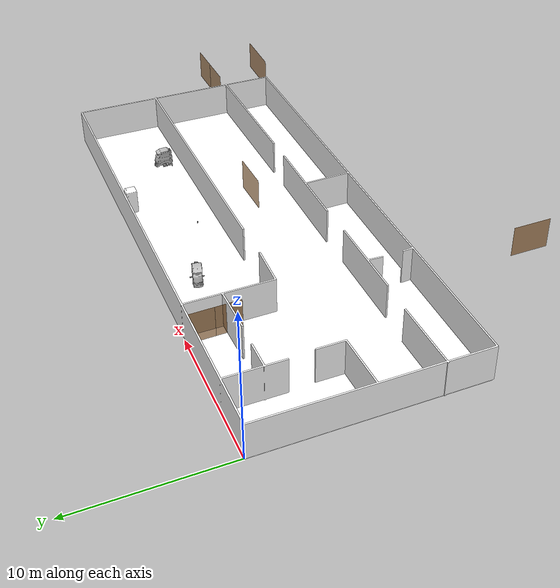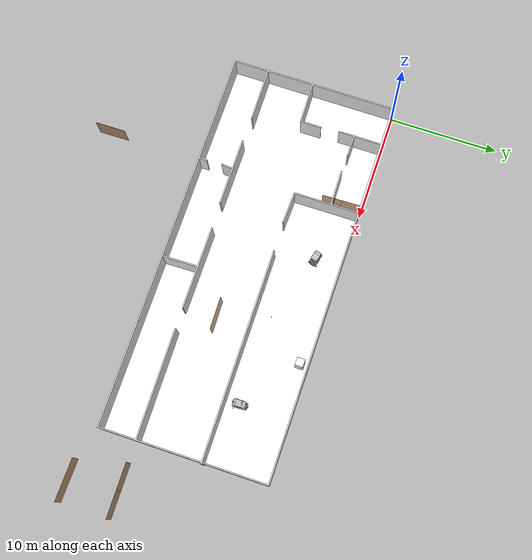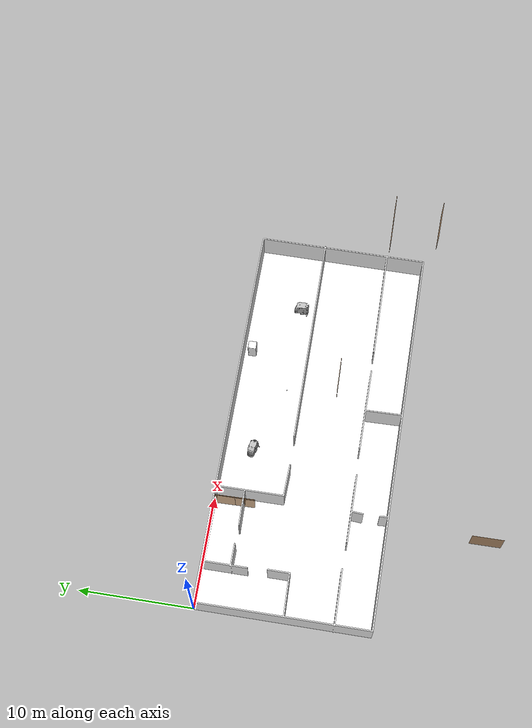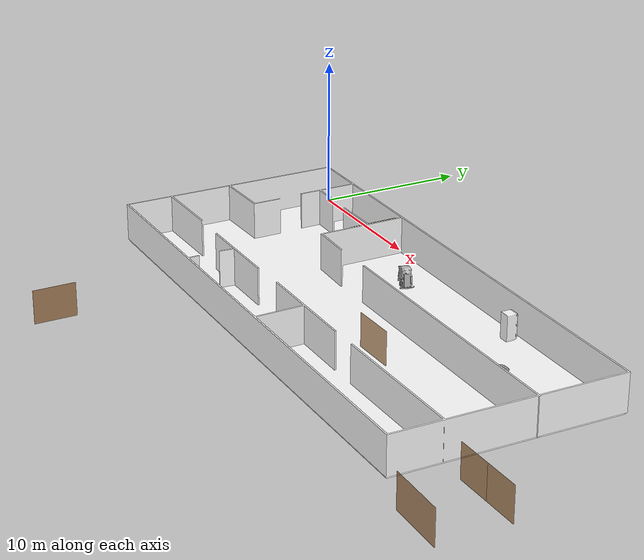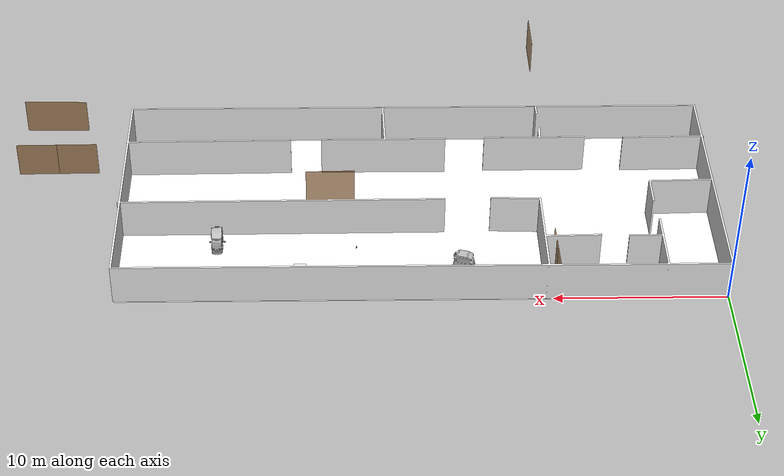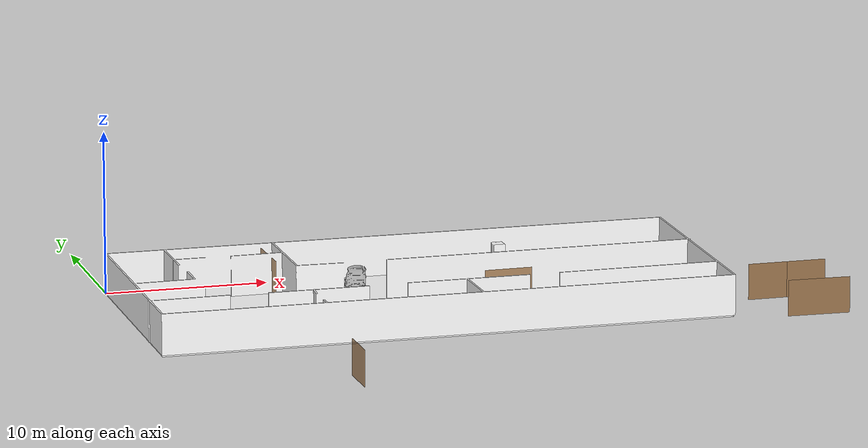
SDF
<sdf version="1.7">
 <world name="world">
  <scene><ambient>0.8 0.8 0.8 1.0</ambient><background>0 0 0</background><grid>false</grid></scene>
  <include><uri>model://sun</uri></include>
  <include>
   <name>OpenRobotics/Fridge</name>
   <uri>model://Fridge</uri>
   <pose>24.42221432101156 -0.8560902065715843 0.0 0 0 1.5708</pose>
   <static>True</static>
  </include>
  <include>
   <name>pickup_sala2</name>
   <uri>model://TeleportDispenser</uri>
   <pose>21.169442083175333 -4.5625300399811834 0.0 0 0 1.5708</pose>
   <static>True</static>
  </include>
  <include>
   <name>coke_sala2</name>
   <uri>model://Coke</uri>
   <pose>21.188769484917323 -4.581857441723171 0.0 0 0 1.5708</pose>
   <static>False</static>
  </include>
  <include>
   <name>ingestor_sala4</name>
   <uri>model://TeleportIngestor</uri>
   <pose>20.376850181237558 -19.412796013736873 0.0 0 0 1.5708</pose>
   <static>True</static>
  </include>
  <include>
   <name>cleanerBotA_1</name>
   <uri>model://CleanerBotA</uri>
   <pose>29.35234396275212 -5.067611050645989 0.0 0 0 1.589734224628802</pose>
  </include>
  <include>
   <name>cleanerBotA_2</name>
   <uri>model://CleanerBotA</uri>
   <pose>15.352104696982295 -2.5894086495066437 0.0 0 0 2.9052178998482416</pose>
  </include>
  <model name="door_sala4">
   <pose>39.914642691861346 -16.329864897744457 0.0 0 0 3.117433033473945</pose>
   <link name="right">
    <pose>0 0 1.11 0 0 0</pose>
    <visual name="right_visual">
     <geometry><box><size>3.836938735549568 0.03 2.2</size></box></geometry>
     <material><ambient>0.5 0.25 0 0.6</ambient><diffuse>0.5 0.25 0 0.6</diffuse></material>
    </visual>
    <collision name="right_collision">
     <geometry><box><size>3.836938735549568 0.03 2.2</size></box></geometry>
     <surface><contact><collide_bitmask>0x02</collide_bitmask></contact></surface>
    </collision>
    <inertial>
     <mass>50.0</mass>
     <inertia><ixx>20.17041666666667</ixx><iyy>81.50874525150299</iyy><izz>61.345828584836326</izz></inertia>
    </inertial>
   </link>
   <joint name="right_joint" type="revolute">
    <parent>world</parent>
    <child>right</child>
    <axis><xyz>0 0 -1</xyz><limit><lower>0</lower><upper>1.57</upper></limit></axis>
    <pose>1.9234693677747838 0 0 0 0 0</pose>
   </joint>
   <plugin name="door" filename="libdoor.so">
    <v_max_door>0.5</v_max_door>
    <a_max_door>0.3</a_max_door>
    <a_nom_door>0.15</a_nom_door>
    <dx_min_door>0.01</dx_min_door>
    <f_max_door>500.0</f_max_door>
    <door name="door_sala4" type="SwingDoor" left_joint_name="empty_joint" right_joint_name="right_joint"/>
   </plugin>
  </model>
  <model name="door_sala5">
   <pose>9.548725989825138 -23.769272370876187 0.0 0 0 1.5774924158624173</pose>
   <link name="right">
    <pose>0 0 1.11 0 0 0</pose>
    <visual name="right_visual">
     <geometry><box><size>2.738047588286064 0.03 2.2</size></box></geometry>
     <material><ambient>0.5 0.25 0 0.6</ambient><diffuse>0.5 0.25 0 0.6</diffuse></material>
    </visual>
    <collision name="right_collision">
     <geometry><box><size>2.738047588286064 0.03 2.2</size></box></geometry>
     <surface><contact><collide_bitmask>0x02</collide_bitmask></contact></surface>
    </collision>
    <inertial>
     <mass>50.0</mass>
     <inertia><ixx>20.17041666666667</ixx><iyy>51.403769148829724</iyy><izz>31.240852482163053</izz></inertia>
    </inertial>
   </link>
   <joint name="right_joint" type="revolute">
    <parent>world</parent>
    <child>right</child>
    <axis><xyz>0 0 -1</xyz><limit><lower>0</lower><upper>1.57</upper></limit></axis>
    <pose>1.374023794143032 0 0 0 0 0</pose>
   </joint>
   <plugin name="door" filename="libdoor.so">
    <v_max_door>0.5</v_max_door>
    <a_max_door>0.3</a_max_door>
    <a_nom_door>0.15</a_nom_door>
    <dx_min_door>0.01</dx_min_door>
    <f_max_door>500.0</f_max_door>
    <door name="door_sala5" type="SwingDoor" left_joint_name="empty_joint" right_joint_name="right_joint"/>
   </plugin>
  </model>
  <model name="door_sala2">
   <pose>22.711844535918296 -9.09240561362051 0.0 0 0 0.021618175512888672</pose>
   <link name="right">
    <pose>0 0 1.11 0 0 0</pose>
    <visual name="right_visual">
     <geometry><box><size>2.9177538366640787 0.03 2.2</size></box></geometry>
     <material><ambient>0.5 0.25 0 0.6</ambient><diffuse>0.5 0.25 0 0.6</diffuse></material>
    </visual>
    <collision name="right_collision">
     <geometry><box><size>2.9177538366640787 0.03 2.2</size></box></geometry>
     <surface><contact><collide_bitmask>0x02</collide_bitmask></contact></surface>
    </collision>
    <inertial>
     <mass>50.0</mass>
     <inertia><ixx>20.17041666666667</ixx><iyy>55.638697714033135</iyy><izz>35.47578104736646</izz></inertia>
    </inertial>
   </link>
   <joint name="right_joint" type="revolute">
    <parent>world</parent>
    <child>right</child>
    <axis><xyz>0 0 -1</xyz><limit><lower>0</lower><upper>1.57</upper></limit></axis>
    <pose>1.4638769183320393 0 0 0 0 0</pose>
   </joint>
   <plugin name="door" filename="libdoor.so">
    <v_max_door>0.5</v_max_door>
    <a_max_door>0.3</a_max_door>
    <a_nom_door>0.15</a_nom_door>
    <dx_min_door>0.01</dx_min_door>
    <f_max_door>500.0</f_max_door>
    <door name="door_sala2" type="SwingDoor" left_joint_name="empty_joint" right_joint_name="right_joint"/>
   </plugin>
  </model>
  <model name="door_sala3">
   <pose>39.38181275364104 -11.889383820615455 0.0 0 0 0.010812536889129221</pose>
   <link name="right">
    <pose>1.2189502653349895 0 1.11 0 0 0</pose>
    <visual name="right_visual">
     <geometry><box><size>2.4279005306699792 0.03 2.2</size></box></geometry>
     <material><ambient>0.5 0.25 0 0.6</ambient><diffuse>0.5 0.25 0 0.6</diffuse></material>
    </visual>
    <collision name="right_collision">
     <geometry><box><size>2.4279005306699792 0.03 2.2</size></box></geometry>
     <surface><contact><collide_bitmask>0x02</collide_bitmask></contact></surface>
    </collision>
    <inertial>
     <mass>50.0</mass>
     <inertia><ixx>20.17041666666667</ixx><iyy>44.7279207784482</iyy><izz>24.565004111781526</izz></inertia>
    </inertial>
   </link>
   <joint name="right_joint" type="prismatic">
    <parent>world</parent>
    <child>right</child>
    <axis>
     <xyz>1 0 0</xyz>
     <limit><lower>0.0</lower><upper>2.437900530669979</upper><effort>500.0</effort></limit>
    </axis>
   </joint>
   <link name="left">
    <pose>-1.2189502653349895 0 1.11 0 0 0</pose>
    <visual name="left_visual">
     <geometry><box><size>2.4279005306699792 0.03 2.2</size></box></geometry>
     <material><ambient>0.5 0.25 0 0.6</ambient><diffuse>0.5 0.25 0 0.6</diffuse></material>
    </visual>
    <collision name="left_collision">
     <geometry><box><size>2.4279005306699792 0.03 2.2</size></box></geometry>
     <surface><contact><collide_bitmask>0x02</collide_bitmask></contact></surface>
    </collision>
    <inertial>
     <mass>50.0</mass>
     <inertia><ixx>20.17041666666667</ixx><iyy>44.7279207784482</iyy><izz>24.565004111781526</izz></inertia>
    </inertial>
   </link>
   <joint name="left_joint" type="prismatic">
    <parent>world</parent>
    <child>left</child>
    <axis>
     <xyz>1 0 0</xyz>
     <limit><lower>-2.437900530669979</lower><upper>0.0</upper><effort>500.0</effort></limit>
    </axis>
   </joint>
   <plugin name="door" filename="libdoor.so">
    <v_max_door>0.2</v_max_door>
    <a_max_door>0.2</a_max_door>
    <a_nom_door>0.08</a_nom_door>
    <dx_min_door>0.001</dx_min_door>
    <f_max_door>100.0</f_max_door>
    <door name="door_sala3" type="DoubleSlidingDoor" left_joint_name="left_joint" right_joint_name="right_joint"/>
   </plugin>
  </model>
  <model name="door_sala1">
   <pose>9.675448899503817 -1.8748211304164333 0.0 0 0 -1.5503192280569054</pose>
   <link name="right">
    <pose>0.870915720719921 0 1.11 0 0 0</pose>
    <visual name="right_visual">
     <geometry><box><size>1.731831441439842 0.03 2.2</size></box></geometry>
     <material><ambient>0.5 0.25 0 0.6</ambient><diffuse>0.5 0.25 0 0.6</diffuse></material>
    </visual>
    <collision name="right_collision">
     <geometry><box><size>1.731831441439842 0.03 2.2</size></box></geometry>
     <surface><contact><collide_bitmask>0x02</collide_bitmask></contact></surface>
    </collision>
    <inertial>
     <mass>50.0</mass>
     <inertia><ixx>20.17041666666667</ixx><iyy>32.66350058983168</iyy><izz>12.500583923165003</izz></inertia>
    </inertial>
   </link>
   <joint name="right_joint" type="prismatic">
    <parent>world</parent>
    <child>right</child>
    <axis>
     <xyz>1 0 0</xyz>
     <limit><lower>0.0</lower><upper>1.741831441439842</upper><effort>500.0</effort></limit>
    </axis>
   </joint>
   <link name="left">
    <pose>-0.870915720719921 0 1.11 0 0 0</pose>
    <visual name="left_visual">
     <geometry><box><size>1.731831441439842 0.03 2.2</size></box></geometry>
     <material><ambient>0.5 0.25 0 0.6</ambient><diffuse>0.5 0.25 0 0.6</diffuse></material>
    </visual>
    <collision name="left_collision">
     <geometry><box><size>1.731831441439842 0.03 2.2</size></box></geometry>
     <surface><contact><collide_bitmask>0x02</collide_bitmask></contact></surface>
    </collision>
    <inertial>
     <mass>50.0</mass>
     <inertia><ixx>20.17041666666667</ixx><iyy>32.66350058983168</iyy><izz>12.500583923165003</izz></inertia>
    </inertial>
   </link>
   <joint name="left_joint" type="prismatic">
    <parent>world</parent>
    <child>left</child>
    <axis>
     <xyz>1 0 0</xyz>
     <limit><lower>-1.741831441439842</lower><upper>0.0</upper><effort>500.0</effort></limit>
    </axis>
   </joint>
   <plugin name="door" filename="libdoor.so">
    <v_max_door>0.2</v_max_door>
    <a_max_door>0.2</a_max_door>
    <a_nom_door>0.08</a_nom_door>
    <dx_min_door>0.001</dx_min_door>
    <f_max_door>100.0</f_max_door>
    <door name="door_sala1" type="DoubleSlidingDoor" left_joint_name="left_joint" right_joint_name="right_joint"/>
   </plugin>
  </model>
  <include><name>my_world_L1</name><uri>model://my_world_L1</uri></include>
  <rmf_charger_waypoints name="charger_waypoints">
   <rmf_vertex name="charge1" x="2.2744014764525873" y="-12.559063553305165" level="L1"/>
   <rmf_vertex name="charge2" x="39.136514760508256" y="-14.102560804403879" level="L1"/>
   <rmf_vertex name="cleanerbot_charger1" x="29.35234396275212" y="-5.067611050645989" level="L1"/>
   <rmf_vertex name="cleanerbot_charger2" x="15.352104696982295" y="-2.5894086495066437" level="L1"/>
  </rmf_charger_waypoints>
 </world>
</sdf>

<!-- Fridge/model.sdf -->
<sdf version="1.6">
  <model name="Fridge">
    <static>true</static>
    <link name="base_link">
      <visual name="visual">
        <geometry>
          <mesh>
            <uri>meshes/fridge.dae</uri>
          </mesh>
        </geometry>
        <material>
          <diffuse>1.0 1.0 1.0</diffuse>
          <specular>1.0 1.0 1.0</specular>
          <pbr>
            <metal>
              <albedo_map>materials/textures/Fridge_Albedo.jpg</albedo_map>
              <normal_map>materials/textures/Fridge_Normal.png</normal_map>
              <roughness_map>materials/textures/Fridge_Roughness.jpg</roughness_map>
              <metalness_map>materials/textures/Fridge_Metalness.jpg</metalness_map>
            </metal>
          </pbr>
        </material>
      </visual>
      <collision name="Box001">
        <pose>0.0 0.0 0.867923 0.0 0.0 0.0</pose>
        <geometry>
          <box>
            <size>0.734673 0.7239 1.73585</size>
          </box>
        </geometry>
      </collision>
    </link>
  </model>
</sdf>

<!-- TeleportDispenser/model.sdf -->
<sdf version="1.6">
  <model name="TeleportDispenser">
    <pose>0.0 0.0 0.0 0.0 0.0 0.0</pose>
    <static>true</static>

    <link name="visual_link">
      <pose>0.0 0.0 0.05 0.0 0.0 0.0</pose>
      <visual name="visual">
        <geometry>
          <box>
            <size>0.1 0.1 0.1</size>
          </box>
        </geometry>
        <material>
          <ambient>128 192 210 0.1</ambient>
          <diffuse>128 192 210 0.1</diffuse>
        </material>
      </visual>
    </link>

    <plugin name="teleport_dispenser" filename="libteleport_dispenser.so">
    </plugin>

  </model>
</sdf>

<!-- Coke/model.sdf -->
<sdf version="1.6">
  <model name='Coke'>
    <static>true</static>
    <link name="body">
      <pose>0 0 0 0 0 0</pose>

        <visual name="visual">
          <geometry>
            <mesh><uri>model://Coke/meshes/coke.obj</uri></mesh>
          </geometry>
        </visual>

        <collision name="collision">
          <geometry>
            <mesh><uri>model://Coke/meshes/coke.obj</uri></mesh>
          </geometry>
        </collision>

        <!-- TODO: Replace with accurate values of mass and inertia -->
        <inertial>
          <mass>1.0</mass>
          <inertia>
            <ixx>0.003366666666666667</ixx>
            <iyy>0.0008666666666666667</iyy>
            <izz>0.0041666666666666675</izz>
          </inertia>
        </inertial>

    </link>

  </model>
</sdf>

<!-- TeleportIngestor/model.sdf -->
<sdf version="1.6">
  <model name="TeleportIngestor">
    <pose>0.0 0.0 0.0 0.0 0.0 0.0</pose>
    <static>true</static>

    <link name="visual_link">
      <pose>0.0 0.0 0.05 0.0 0.0 0.0</pose>
      <visual name="visual">
        <geometry>
          <box>
            <size>0.1 0.1 0.1</size>
          </box>
        </geometry>
        <material>
          <ambient>128 192 210 0.1</ambient>
          <diffuse>128 192 210 0.1</diffuse>
        </material>
      </visual>
    </link>

    <plugin name="teleport_ingestor" filename="libteleport_ingestor.so">
    </plugin>

  </model>
</sdf>

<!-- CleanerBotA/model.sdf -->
<sdf version="1.6">
  <model name='CleanerBotA'>

    <!-- TODO: Find actual physical properties for CleanerBotA instead of duplicating -->
    <!-- Note: rotational axis of the robot should located at the origin  -->

    <plugin name="slotcar" filename="libslotcar.so">

      <!-- Forward / Backward -->
      <nominal_drive_speed>0.7</nominal_drive_speed>
      <nominal_drive_acceleration>0.5</nominal_drive_acceleration>
      <max_drive_acceleration>0.6</max_drive_acceleration>

      <!-- Turning -->
      <nominal_turn_speed>0.4</nominal_turn_speed>
      <nominal_turn_acceleration>1.0</nominal_turn_acceleration>
      <max_turn_acceleration>1.2</max_turn_acceleration>

      <!-- Stop distance and radius  -->
      <stop_distance>1.5</stop_distance>
      <stop_radius>1.5</stop_radius>

      <!-- Can the robot drive backwards -->
      <reversible>false</reversible>

      <!-- Battery params -->
      <nominal_voltage>24.0</nominal_voltage>
      <nominal_capacity>20.0</nominal_capacity>
      <charging_current>10.0</charging_current>

      <!-- Physical params -->
      <mass>70.0</mass>
      <inertia>40.0</inertia>
      <friction_coefficient>0.22</friction_coefficient>

      <!-- Power systems -->
      <nominal_power>100.0</nominal_power>

    </plugin>

    <!-- Main CleanerBotA Body -->

    <link name="body">
      <pose>0 0 0 0 0 0</pose>

      <inertial>
        <pose>0.36 0 0.43294142 0 0 0</pose>
        <mass>15.0</mass> <!-- Mass reduced to prevent model rolling when stationary -->
        <inertia>
          <ixx>3.016</ixx>
          <iyy>2.332</iyy>
          <izz>2.425</izz>
        </inertia>
      </inertial>

      <visual name="visual">
        <pose frame=''>0.36 0 0 0 0 0</pose>
        <geometry>
          <mesh><uri>model://CleanerBotA/meshes/CleanerBotA.obj</uri></mesh>
        </geometry>
      </visual>
      <collision name="body_collision">
        <pose frame=''>0.46 0 0.7 0 0 0</pose>
        <geometry>
          <box>
            <size>1.3 0.8 1.2</size>
          </box>
        </geometry>
      </collision>

      <visual name="WheelFront">
        <pose>0.86 0.0 0.07 0 0 0</pose>
        <geometry>
          <mesh>
            <uri>model://CleanerBotA/meshes/CleanerBotA_WheelFront.obj</uri>
          </mesh>
        </geometry>
      </visual>
      <collision name='front_wheel_collision'>
        <pose>0.86 0.0 0.06 0 0 0</pose>
        <geometry>
          <sphere>
            <radius>0.1</radius>
          </sphere>
        </geometry>
        <surface>
          <contact>
            <ode>
              <kp>1e+08</kp>
              <min_depth>0.005</min_depth>
            </ode>
          </contact>
          <friction>
            <ode>
              <mu>0</mu>
              <mu2>0</mu2>
            </ode>
          </friction>
        </surface>
      </collision>

    </link>

    <!-- Left wheel link and revolute joint -->

    <link name="tire_left">
      <pose>0 0.26 0.08 0 0 0</pose>

      <inertial>
        <pose>0 0 0 0 0 0</pose>
        <mass>5.0</mass>
        <inertia>
          <ixx>0.02</ixx>
          <iyy>0.02</iyy>
          <izz>0.02</izz>
        </inertia>
      </inertial>

      <visual name="tire_left">
        <geometry>
          <mesh>
            <uri>model://CleanerBotA/meshes/CleanerBotA_WheelBack.obj</uri>
          </mesh>
        </geometry>
      </visual>

      <collision name='tire_left_collision'>
        <geometry>
          <sphere>
            <radius>0.1</radius>
          </sphere>
        </geometry>
        <surface>
          <contact>
            <ode>
              <kp>10000000.0</kp>
              <kd>1.0</kd>
            </ode>
          </contact>
        </surface>
      </collision>
    </link>

    <joint name="joint_tire_left" type="revolute">
      <parent>body</parent>
      <child>tire_left</child>
      <axis>
        <xyz>0 1 0</xyz>
      </axis>
    </joint>

    <!-- Right wheel link and revolute joint -->

    <link name="tire_right">
      <pose>0 -0.26 0.08 0 0 0</pose>
      <inertial>
        <pose>0 0 0 0 0 0</pose>
        <mass>5.0</mass>
        <inertia>
          <ixx>0.02</ixx>
          <iyy>0.02</iyy>
          <izz>0.02</izz>
        </inertia>
      </inertial>

      <visual name="tire_right">
        <geometry>
          <mesh>
            <uri>model://CleanerBotA/meshes/CleanerBotA_WheelBack.obj</uri>
          </mesh>
        </geometry>
      </visual>

      <collision name='tire_right_collision'>
        <geometry>
          <sphere>
            <radius>0.1</radius>
          </sphere>
        </geometry>
        <surface>
          <contact>
            <ode>
              <kp>10000000.0</kp>
              <kd>1.0</kd>
            </ode>
          </contact>
        </surface>
      </collision>
    </link>

    <joint name="joint_tire_right" type="revolute">
      <parent>body</parent>
      <child>tire_right</child>
      <axis>
        <xyz>0 1 0</xyz>
      </axis>
    </joint>

  </model>
</sdf>

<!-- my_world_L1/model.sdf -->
<sdf version="1.7">
  <model name="my_world_L1">
    <static>true</static>
    <link name="floor_1">
      <visual name="visual">
        <geometry>
          <mesh>
            <uri>model://my_world_L1/meshes/floor_1.obj</uri>
          </mesh>
        </geometry>
        <material>
          <diffuse>1.0 1.0 1.0</diffuse>
          <specular>0.1 0.1 0.1</specular>
          <pbr>
            <metal>
              <metalness>0.0</metalness>
              <albedo_map>model://my_world_L1/meshes/blue_linoleum.png</albedo_map>
            </metal>
          </pbr>
          <script>
            <uri>model://my_world_L1/meshes/</uri>
            <name>floor_1_Diffuse</name>
          </script>
        </material>
      </visual>
      <collision name="collision">
        <geometry>
          <mesh>
            <uri>model://my_world_L1/meshes/floor_1.obj</uri>
          </mesh>
        </geometry>
        <surface>
          <contact>
            <collide_bitmask>0x01</collide_bitmask>
          </contact>
        </surface>
      </collision>
    </link>
    <link name="floor_2">
      <visual name="visual">
        <geometry>
          <mesh>
            <uri>model://my_world_L1/meshes/floor_2.obj</uri>
          </mesh>
        </geometry>
        <material>
          <diffuse>1.0 1.0 1.0</diffuse>
          <specular>0.1 0.1 0.1</specular>
          <pbr>
            <metal>
              <metalness>0.0</metalness>
              <albedo_map>model://my_world_L1/meshes/blue_linoleum.png</albedo_map>
            </metal>
          </pbr>
          <script>
            <uri>model://my_world_L1/meshes/</uri>
            <name>floor_2_Diffuse</name>
          </script>
        </material>
      </visual>
      <collision name="collision">
        <geometry>
          <mesh>
            <uri>model://my_world_L1/meshes/floor_2.obj</uri>
          </mesh>
        </geometry>
        <surface>
          <contact>
            <collide_bitmask>0x01</collide_bitmask>
          </contact>
        </surface>
      </collision>
    </link>
    <link name="wall_1">
      <visual name="wall_1">
        <geometry>
          <mesh>
            <uri>model://my_world_L1/meshes/wall_1.obj</uri>
          </mesh>
        </geometry>
        <transparency>0.0</transparency>
        <material>
          <diffuse>1.0 1.0 1.0</diffuse>
          <specular>0.1 0.1 0.1</specular>
          <pbr>
            <metal>
              <metalness>0.0</metalness>
              <albedo_map>model://my_world_L1/meshes/default.png</albedo_map>
            </metal>
          </pbr>
          <script>
            <uri>model://my_world_L1/meshes/</uri>
            <name>wall_1_Diffuse</name>
          </script>
        </material>
      </visual>
      <collision name="collision">
        <geometry>
          <mesh>
            <uri>model://my_world_L1/meshes/wall_1.obj</uri>
          </mesh>
        </geometry>
        <surface>
          <contact>
            <collide_bitmask>0x01</collide_bitmask>
          </contact>
        </surface>
      </collision>
      <pose>-0.08369485550906486 -15.20674566278495 0 0 0 0</pose>
    </link>
  </model>
</sdf>
